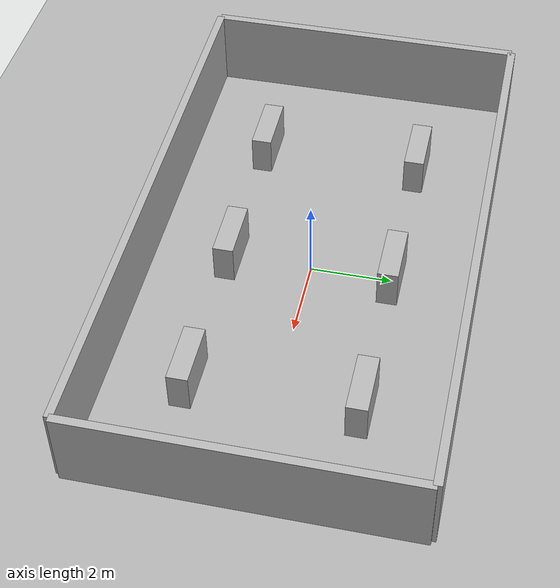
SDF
<?xml version="1.0" ?>
<sdf version="1.6">
  <world name="warehouse_world">
    <plugin filename="gz-sim-physics-system" name="gz::sim::systems::Physics"/>
    <plugin filename="gz-sim-user-commands-system" name="gz::sim::systems::UserCommands"/>
    <plugin filename="gz-sim-scene-broadcaster-system" name="gz::sim::systems::SceneBroadcaster"/>
    <plugin filename="gz-sim-sensors-system" name="gz::sim::systems::Sensors">
      <render_engine>ogre2</render_engine>
    </plugin>
    <plugin filename="gz-sim-imu-system" name="gz::sim::systems::Imu"/>
    <light type="directional" name="sun">
  <cast_shadows>true</cast_shadows>
  <pose>0 0 10 0 0 0</pose>
  <diffuse>0.8 0.8 0.8 1</diffuse>
  <specular>0.2 0.2 0.2 1</specular>
  <attenuation>
    <range>1000</range>
    <constant>0.9</constant>
    <linear>0.01</linear>
    <quadratic>0.001</quadratic>
  </attenuation>
  <direction>-0.5 0.1 -0.9</direction>
</light>

<model name="ground_plane">
  <static>true</static>
  <link name="link">
    <collision name="collision">
      <geometry>
        <plane>
          <normal>0 0 1</normal>
          <size>20 20</size>
        </plane>
      </geometry>
    </collision>
    <visual name="visual">
      <geometry>
        <plane>
          <normal>0 0 1</normal>
          <size>20 20</size>
        </plane>
      </geometry>
      <material>
        <ambient>0.7 0.7 0.7 1</ambient>
        <diffuse>0.7 0.7 0.7 1</diffuse>
      </material>
    </visual>
  </link>
</model>

    <!-- Boundary walls -->
    <model name="north_wall">
      <static>true</static>
      <pose>0 4 1 0 0 0</pose>
      <link name="link">
        <collision name="collision">
          <geometry><box><size>14 0.2 2</size></box></geometry>
        </collision>
        <visual name="visual">
          <geometry><box><size>14 0.2 2</size></box></geometry>
        </visual>
      </link>
    </model>

    <model name="south_wall">
      <static>true</static>
      <pose>0 -4 1 0 0 0</pose>
      <link name="link">
        <collision name="collision">
          <geometry><box><size>14 0.2 2</size></box></geometry>
        </collision>
        <visual name="visual">
          <geometry><box><size>14 0.2 2</size></box></geometry>
        </visual>
      </link>
    </model>

    <model name="west_wall">
      <static>true</static>
      <pose>-7 0 1 0 0 0</pose>
      <link name="link">
        <collision name="collision">
          <geometry><box><size>0.2 8 2</size></box></geometry>
        </collision>
        <visual name="visual">
          <geometry><box><size>0.2 8 2</size></box></geometry>
        </visual>
      </link>
    </model>

    <model name="east_wall">
      <static>true</static>
      <pose>7 0 1 0 0 0</pose>
      <link name="link">
        <collision name="collision">
          <geometry><box><size>0.2 8 2</size></box></geometry>
        </collision>
        <visual name="visual">
          <geometry><box><size>0.2 8 2</size></box></geometry>
        </visual>
      </link>
    </model>

    <!-- Shelf stations -->
    <model name="shelf_A1">
      <static>true</static>
      <pose>-4 2 0.5 0 0 0</pose>
      <link name="link">
        <collision name="collision">
          <geometry><box><size>1.5 0.5 1</size></box></geometry>
        </collision>
        <visual name="visual">
          <geometry><box><size>1.5 0.5 1</size></box></geometry>
        </visual>
      </link>
    </model>

    <model name="shelf_A2">
      <static>true</static>
      <pose>0 2 0.5 0 0 0</pose>
      <link name="link">
        <collision name="collision">
          <geometry><box><size>1.5 0.5 1</size></box></geometry>
        </collision>
        <visual name="visual">
          <geometry><box><size>1.5 0.5 1</size></box></geometry>
        </visual>
      </link>
    </model>

    <model name="shelf_A3">
      <static>true</static>
      <pose>4 2 0.5 0 0 0</pose>
      <link name="link">
        <collision name="collision">
          <geometry><box><size>1.5 0.5 1</size></box></geometry>
        </collision>
        <visual name="visual">
          <geometry><box><size>1.5 0.5 1</size></box></geometry>
        </visual>
      </link>
    </model>

    <model name="shelf_B1">
      <static>true</static>
      <pose>-4 -2 0.5 0 0 0</pose>
      <link name="link">
        <collision name="collision">
          <geometry><box><size>1.5 0.5 1</size></box></geometry>
        </collision>
        <visual name="visual">
          <geometry><box><size>1.5 0.5 1</size></box></geometry>
        </visual>
      </link>
    </model>

    <model name="shelf_B2">
      <static>true</static>
      <pose>0 -2 0.5 0 0 0</pose>
      <link name="link">
        <collision name="collision">
          <geometry><box><size>1.5 0.5 1</size></box></geometry>
        </collision>
        <visual name="visual">
          <geometry><box><size>1.5 0.5 1</size></box></geometry>
        </visual>
      </link>
    </model>

    <model name="shelf_B3">
      <static>true</static>
      <pose>4 -2 0.5 0 0 0</pose>
      <link name="link">
        <collision name="collision">
          <geometry><box><size>1.5 0.5 1</size></box></geometry>
        </collision>
        <visual name="visual">
          <geometry><box><size>1.5 0.5 1</size></box></geometry>
        </visual>
      </link>
    </model>
  </world>
</sdf>
